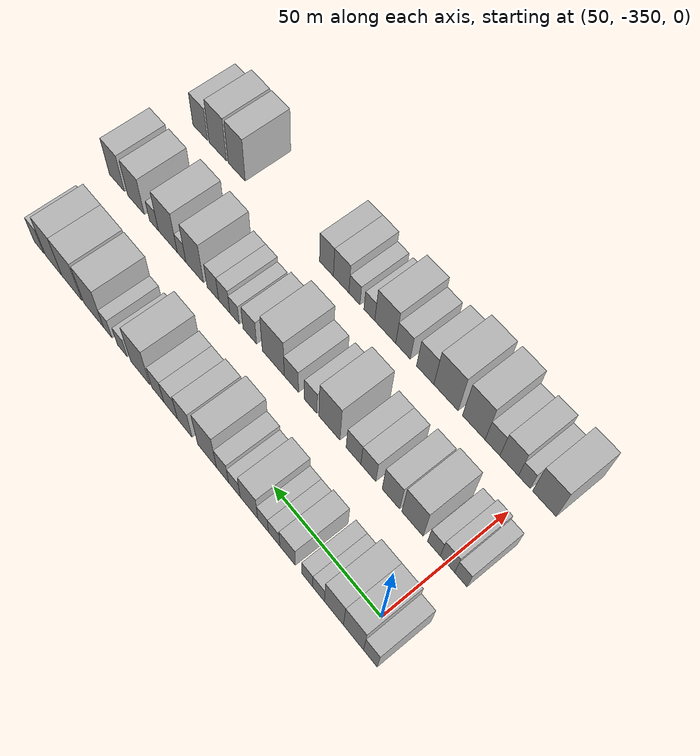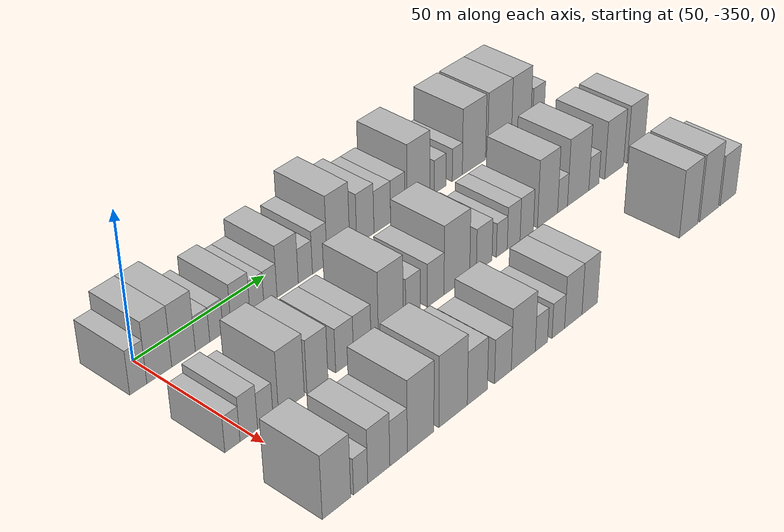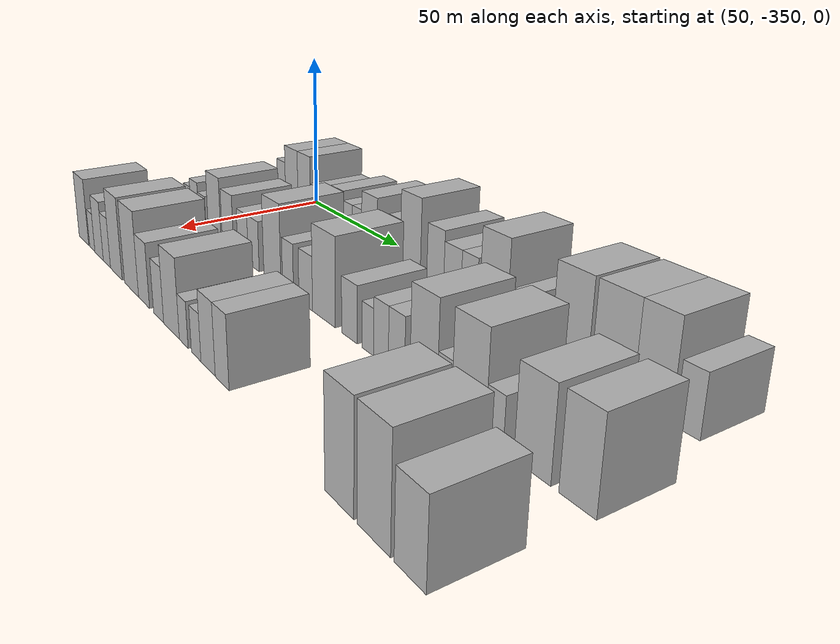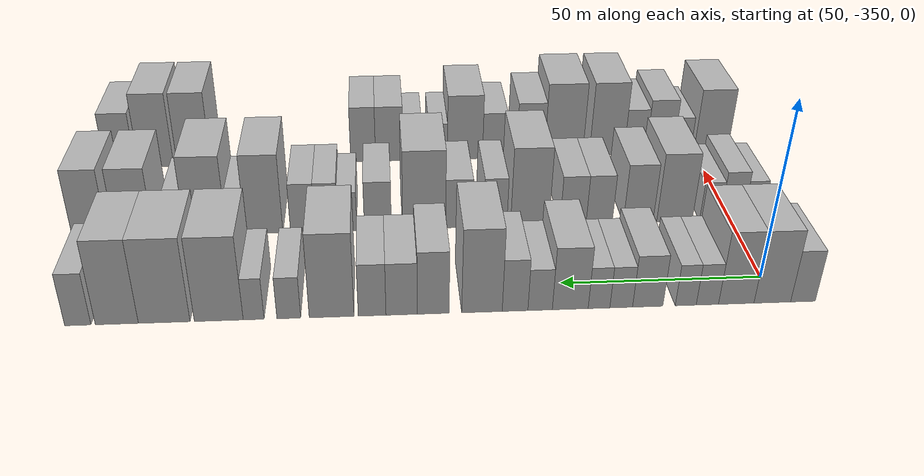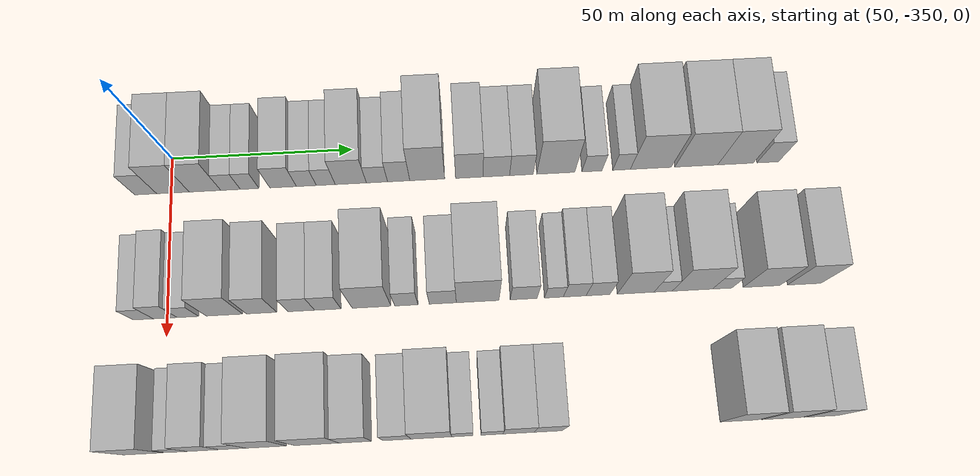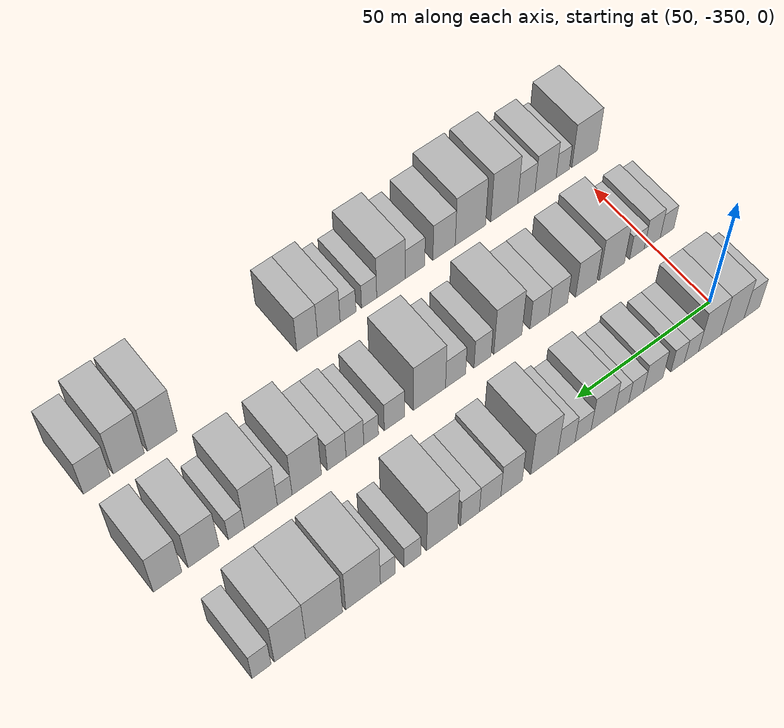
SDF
<sdf version="1.6">
 <world name="default">
  <model name="building_1">
   <static>1</static>
   <pose>50.0000 -356.9835 0 0.000000 0.000000 0.000000</pose>
   <link name="link">
    <pose>0 0 7.50 0 0 0</pose>
    <collision name="collision"><geometry><box><size>20.0000 6.0329 15.0000</size></box></geometry></collision>
    <visual name="visual">
     <cast_shadows>0</cast_shadows>
     <geometry><box><size>20.0000 6.0329 15.0000</size></box></geometry>
     <material>
      <script>
       <uri>model://HANNAS_wall/materials/scripts</uri>
       <uri>model://HANNAS_wall/materials/textures</uri>
       <name>vrc/HANNAS_wall</name>
      </script>
     </material>
    </visual>
   </link>
  </model>
  <model name="building_2">
   <static>1</static>
   <pose>50.0000 -349.4914 0 0.000000 0.000000 0.000000</pose>
   <link name="link">
    <pose>0 0 10.50 0 0 0</pose>
    <collision name="collision"><geometry><box><size>20.0000 8.9514 21.0000</size></box></geometry></collision>
    <visual name="visual">
     <cast_shadows>0</cast_shadows>
     <geometry><box><size>20.0000 8.9514 21.0000</size></box></geometry>
     <material>
      <script>
       <uri>model://HANNAS_wall/materials/scripts</uri>
       <uri>model://HANNAS_wall/materials/textures</uri>
       <name>vrc/HANNAS_wall</name>
      </script>
     </material>
    </visual>
   </link>
  </model>
  <model name="building_3">
   <static>1</static>
   <pose>50.0000 -340.6945 0 0.000000 0.000000 0.000000</pose>
   <link name="link">
    <pose>0 0 10.50 0 0 0</pose>
    <collision name="collision"><geometry><box><size>20.0000 8.6423 21.0000</size></box></geometry></collision>
    <visual name="visual">
     <cast_shadows>0</cast_shadows>
     <geometry><box><size>20.0000 8.6423 21.0000</size></box></geometry>
     <material>
      <script>
       <uri>model://HANNAS_wall/materials/scripts</uri>
       <uri>model://HANNAS_wall/materials/textures</uri>
       <name>vrc/HANNAS_wall</name>
      </script>
     </material>
    </visual>
   </link>
  </model>
  <model name="building_4">
   <static>1</static>
   <pose>50.0000 -333.6761 0 0.000000 0.000000 0.000000</pose>
   <link name="link">
    <pose>0 0 6.00 0 0 0</pose>
    <collision name="collision"><geometry><box><size>20.0000 5.3945 12.0000</size></box></geometry></collision>
    <visual name="visual">
     <cast_shadows>0</cast_shadows>
     <geometry><box><size>20.0000 5.3945 12.0000</size></box></geometry>
     <material>
      <script>
       <uri>model://HANNAS_wall/materials/scripts</uri>
       <uri>model://HANNAS_wall/materials/textures</uri>
       <name>vrc/HANNAS_wall</name>
      </script>
     </material>
    </visual>
   </link>
  </model>
  <model name="building_5">
   <static>1</static>
   <pose>50.0000 -328.4393 0 0.000000 0.000000 0.000000</pose>
   <link name="link">
    <pose>0 0 6.00 0 0 0</pose>
    <collision name="collision"><geometry><box><size>20.0000 5.0790 12.0000</size></box></geometry></collision>
    <visual name="visual">
     <cast_shadows>0</cast_shadows>
     <geometry><box><size>20.0000 5.0790 12.0000</size></box></geometry>
     <material>
      <script>
       <uri>model://HANNAS_wall/materials/scripts</uri>
       <uri>model://HANNAS_wall/materials/textures</uri>
       <name>vrc/HANNAS_wall</name>
      </script>
     </material>
    </visual>
   </link>
  </model>
  <model name="building_6">
   <static>1</static>
   <pose>50.0000 -319.2377 0 0.000000 0.000000 0.000000</pose>
   <link name="link">
    <pose>0 0 7.50 0 0 0</pose>
    <collision name="collision"><geometry><box><size>20.0000 7.3243 15.0000</size></box></geometry></collision>
    <visual name="visual">
     <cast_shadows>0</cast_shadows>
     <geometry><box><size>20.0000 7.3243 15.0000</size></box></geometry>
     <material>
      <script>
       <uri>model://HANNAS_wall/materials/scripts</uri>
       <uri>model://HANNAS_wall/materials/textures</uri>
       <name>vrc/HANNAS_wall</name>
      </script>
     </material>
    </visual>
   </link>
  </model>
  <model name="building_7">
   <static>1</static>
   <pose>50.0000 -312.8439 0 0.000000 0.000000 0.000000</pose>
   <link name="link">
    <pose>0 0 6.00 0 0 0</pose>
    <collision name="collision"><geometry><box><size>20.0000 5.4632 12.0000</size></box></geometry></collision>
    <visual name="visual">
     <cast_shadows>0</cast_shadows>
     <geometry><box><size>20.0000 5.4632 12.0000</size></box></geometry>
     <material>
      <script>
       <uri>model://HANNAS_wall/materials/scripts</uri>
       <uri>model://HANNAS_wall/materials/textures</uri>
       <name>vrc/HANNAS_wall</name>
      </script>
     </material>
    </visual>
   </link>
  </model>
  <model name="building_8">
   <static>1</static>
   <pose>50.0000 -307.4999 0 0.000000 0.000000 0.000000</pose>
   <link name="link">
    <pose>0 0 6.00 0 0 0</pose>
    <collision name="collision"><geometry><box><size>20.0000 5.2248 12.0000</size></box></geometry></collision>
    <visual name="visual">
     <cast_shadows>0</cast_shadows>
     <geometry><box><size>20.0000 5.2248 12.0000</size></box></geometry>
     <material>
      <script>
       <uri>model://HANNAS_wall/materials/scripts</uri>
       <uri>model://HANNAS_wall/materials/textures</uri>
       <name>vrc/HANNAS_wall</name>
      </script>
     </material>
    </visual>
   </link>
  </model>
  <model name="building_9">
   <static>1</static>
   <pose>50.0000 -300.5906 0 0.000000 0.000000 0.000000</pose>
   <link name="link">
    <pose>0 0 9.00 0 0 0</pose>
    <collision name="collision"><geometry><box><size>20.0000 8.5937 18.0000</size></box></geometry></collision>
    <visual name="visual">
     <cast_shadows>0</cast_shadows>
     <geometry><box><size>20.0000 8.5937 18.0000</size></box></geometry>
     <material>
      <script>
       <uri>model://HANNAS_wall/materials/scripts</uri>
       <uri>model://HANNAS_wall/materials/textures</uri>
       <name>vrc/HANNAS_wall</name>
      </script>
     </material>
    </visual>
   </link>
  </model>
  <model name="building_10">
   <static>1</static>
   <pose>50.0000 -293.3726 0 0.000000 0.000000 0.000000</pose>
   <link name="link">
    <pose>0 0 6.00 0 0 0</pose>
    <collision name="collision"><geometry><box><size>20.0000 5.8423 12.0000</size></box></geometry></collision>
    <visual name="visual">
     <cast_shadows>0</cast_shadows>
     <geometry><box><size>20.0000 5.8423 12.0000</size></box></geometry>
     <material>
      <script>
       <uri>model://HANNAS_wall/materials/scripts</uri>
       <uri>model://HANNAS_wall/materials/textures</uri>
       <name>vrc/HANNAS_wall</name>
      </script>
     </material>
    </visual>
   </link>
  </model>
  <model name="building_11">
   <static>1</static>
   <pose>50.0000 -287.3833 0 0.000000 0.000000 0.000000</pose>
   <link name="link">
    <pose>0 0 7.50 0 0 0</pose>
    <collision name="collision"><geometry><box><size>20.0000 6.1364 15.0000</size></box></geometry></collision>
    <visual name="visual">
     <cast_shadows>0</cast_shadows>
     <geometry><box><size>20.0000 6.1364 15.0000</size></box></geometry>
     <material>
      <script>
       <uri>model://HANNAS_wall/materials/scripts</uri>
       <uri>model://HANNAS_wall/materials/textures</uri>
       <name>vrc/HANNAS_wall</name>
      </script>
     </material>
    </visual>
   </link>
  </model>
  <model name="building_12">
   <static>1</static>
   <pose>50.0000 -279.4902 0 0.000000 0.000000 0.000000</pose>
   <link name="link">
    <pose>0 0 12.00 0 0 0</pose>
    <collision name="collision"><geometry><box><size>20.0000 9.6498 24.0000</size></box></geometry></collision>
    <visual name="visual">
     <cast_shadows>0</cast_shadows>
     <geometry><box><size>20.0000 9.6498 24.0000</size></box></geometry>
     <material>
      <script>
       <uri>model://HANNAS_wall/materials/scripts</uri>
       <uri>model://HANNAS_wall/materials/textures</uri>
       <name>vrc/HANNAS_wall</name>
      </script>
     </material>
    </visual>
   </link>
  </model>
  <model name="building_13">
   <static>1</static>
   <pose>50.0000 -267.8893 0 0.000000 0.000000 0.000000</pose>
   <link name="link">
    <pose>0 0 9.00 0 0 0</pose>
    <collision name="collision"><geometry><box><size>20.0000 7.5519 18.0000</size></box></geometry></collision>
    <visual name="visual">
     <cast_shadows>0</cast_shadows>
     <geometry><box><size>20.0000 7.5519 18.0000</size></box></geometry>
     <material>
      <script>
       <uri>model://HANNAS_wall/materials/scripts</uri>
       <uri>model://HANNAS_wall/materials/textures</uri>
       <name>vrc/HANNAS_wall</name>
      </script>
     </material>
    </visual>
   </link>
  </model>
  <model name="building_14">
   <static>1</static>
   <pose>50.0000 -260.4204 0 0.000000 0.000000 0.000000</pose>
   <link name="link">
    <pose>0 0 7.50 0 0 0</pose>
    <collision name="collision"><geometry><box><size>20.0000 7.3857 15.0000</size></box></geometry></collision>
    <visual name="visual">
     <cast_shadows>0</cast_shadows>
     <geometry><box><size>20.0000 7.3857 15.0000</size></box></geometry>
     <material>
      <script>
       <uri>model://HANNAS_wall/materials/scripts</uri>
       <uri>model://HANNAS_wall/materials/textures</uri>
       <name>vrc/HANNAS_wall</name>
      </script>
     </material>
    </visual>
   </link>
  </model>
  <model name="building_15">
   <static>1</static>
   <pose>50.0000 -253.4633 0 0.000000 0.000000 0.000000</pose>
   <link name="link">
    <pose>0 0 7.50 0 0 0</pose>
    <collision name="collision"><geometry><box><size>20.0000 6.5285 15.0000</size></box></geometry></collision>
    <visual name="visual">
     <cast_shadows>0</cast_shadows>
     <geometry><box><size>20.0000 6.5285 15.0000</size></box></geometry>
     <material>
      <script>
       <uri>model://HANNAS_wall/materials/scripts</uri>
       <uri>model://HANNAS_wall/materials/textures</uri>
       <name>vrc/HANNAS_wall</name>
      </script>
     </material>
    </visual>
   </link>
  </model>
  <model name="building_16">
   <static>1</static>
   <pose>50.0000 -243.9279 0 0.000000 0.000000 0.000000</pose>
   <link name="link">
    <pose>0 0 12.00 0 0 0</pose>
    <collision name="collision"><geometry><box><size>20.0000 10.5424 24.0000</size></box></geometry></collision>
    <visual name="visual">
     <cast_shadows>0</cast_shadows>
     <geometry><box><size>20.0000 10.5424 24.0000</size></box></geometry>
     <material>
      <script>
       <uri>model://HANNAS_wall/materials/scripts</uri>
       <uri>model://HANNAS_wall/materials/textures</uri>
       <name>vrc/HANNAS_wall</name>
      </script>
     </material>
    </visual>
   </link>
  </model>
  <model name="building_17">
   <static>1</static>
   <pose>50.0000 -233.8739 0 0.000000 0.000000 0.000000</pose>
   <link name="link">
    <pose>0 0 6.00 0 0 0</pose>
    <collision name="collision"><geometry><box><size>20.0000 5.5656 12.0000</size></box></geometry></collision>
    <visual name="visual">
     <cast_shadows>0</cast_shadows>
     <geometry><box><size>20.0000 5.5656 12.0000</size></box></geometry>
     <material>
      <script>
       <uri>model://HANNAS_wall/materials/scripts</uri>
       <uri>model://HANNAS_wall/materials/textures</uri>
       <name>vrc/HANNAS_wall</name>
      </script>
     </material>
    </visual>
   </link>
  </model>
  <model name="building_18">
   <static>1</static>
   <pose>50.0000 -225.6553 0 0.000000 0.000000 0.000000</pose>
   <link name="link">
    <pose>0 0 6.00 0 0 0</pose>
    <collision name="collision"><geometry><box><size>20.0000 4.8715 12.0000</size></box></geometry></collision>
    <visual name="visual">
     <cast_shadows>0</cast_shadows>
     <geometry><box><size>20.0000 4.8715 12.0000</size></box></geometry>
     <material>
      <script>
       <uri>model://HANNAS_wall/materials/scripts</uri>
       <uri>model://HANNAS_wall/materials/textures</uri>
       <name>vrc/HANNAS_wall</name>
      </script>
     </material>
    </visual>
   </link>
  </model>
  <model name="building_19">
   <static>1</static>
   <pose>50.0000 -217.5249 0 0.000000 0.000000 0.000000</pose>
   <link name="link">
    <pose>0 0 12.00 0 0 0</pose>
    <collision name="collision"><geometry><box><size>20.0000 11.3892 24.0000</size></box></geometry></collision>
    <visual name="visual">
     <cast_shadows>0</cast_shadows>
     <geometry><box><size>20.0000 11.3892 24.0000</size></box></geometry>
     <material>
      <script>
       <uri>model://HANNAS_wall/materials/scripts</uri>
       <uri>model://HANNAS_wall/materials/textures</uri>
       <name>vrc/HANNAS_wall</name>
      </script>
     </material>
    </visual>
   </link>
  </model>
  <model name="building_20">
   <static>1</static>
   <pose>50.0000 -204.8375 0 0.000000 0.000000 0.000000</pose>
   <link name="link">
    <pose>0 0 12.00 0 0 0</pose>
    <collision name="collision"><geometry><box><size>20.0000 11.9856 24.0000</size></box></geometry></collision>
    <visual name="visual">
     <cast_shadows>0</cast_shadows>
     <geometry><box><size>20.0000 11.9856 24.0000</size></box></geometry>
     <material>
      <script>
       <uri>model://HANNAS_wall/materials/scripts</uri>
       <uri>model://HANNAS_wall/materials/textures</uri>
       <name>vrc/HANNAS_wall</name>
      </script>
     </material>
    </visual>
   </link>
  </model>
  <model name="building_21">
   <static>1</static>
   <pose>50.0000 -193.8713 0 0.000000 0.000000 0.000000</pose>
   <link name="link">
    <pose>0 0 12.00 0 0 0</pose>
    <collision name="collision"><geometry><box><size>20.0000 9.9468 24.0000</size></box></geometry></collision>
    <visual name="visual">
     <cast_shadows>0</cast_shadows>
     <geometry><box><size>20.0000 9.9468 24.0000</size></box></geometry>
     <material>
      <script>
       <uri>model://HANNAS_wall/materials/scripts</uri>
       <uri>model://HANNAS_wall/materials/textures</uri>
       <name>vrc/HANNAS_wall</name>
      </script>
     </material>
    </visual>
   </link>
  </model>
  <model name="building_22">
   <static>1</static>
   <pose>50.0000 -184.8738 0 0.000000 0.000000 0.000000</pose>
   <link name="link">
    <pose>0 0 7.50 0 0 0</pose>
    <collision name="collision"><geometry><box><size>20.0000 6.0483 15.0000</size></box></geometry></collision>
    <visual name="visual">
     <cast_shadows>0</cast_shadows>
     <geometry><box><size>20.0000 6.0483 15.0000</size></box></geometry>
     <material>
      <script>
       <uri>model://HANNAS_wall/materials/scripts</uri>
       <uri>model://HANNAS_wall/materials/textures</uri>
       <name>vrc/HANNAS_wall</name>
      </script>
     </material>
    </visual>
   </link>
  </model>
  <model name="building_88">
   <static>1</static>
   <pose>85.0000 -356.3229 0 0.000000 0.000000 0.000000</pose>
   <link name="link">
    <pose>0 0 6.00 0 0 0</pose>
    <collision name="collision"><geometry><box><size>20.0000 5.3542 12.0000</size></box></geometry></collision>
    <visual name="visual">
     <cast_shadows>0</cast_shadows>
     <geometry><box><size>20.0000 5.3542 12.0000</size></box></geometry>
     <material>
      <script>
       <uri>model://HANNAS_wall/materials/scripts</uri>
       <uri>model://HANNAS_wall/materials/textures</uri>
       <name>vrc/HANNAS_wall</name>
      </script>
     </material>
    </visual>
   </link>
  </model>
  <model name="building_89">
   <static>1</static>
   <pose>85.0000 -350.4812 0 0.000000 0.000000 0.000000</pose>
   <link name="link">
    <pose>0 0 7.50 0 0 0</pose>
    <collision name="collision"><geometry><box><size>20.0000 6.3292 15.0000</size></box></geometry></collision>
    <visual name="visual">
     <cast_shadows>0</cast_shadows>
     <geometry><box><size>20.0000 6.3292 15.0000</size></box></geometry>
     <material>
      <script>
       <uri>model://HANNAS_wall/materials/scripts</uri>
       <uri>model://HANNAS_wall/materials/textures</uri>
       <name>vrc/HANNAS_wall</name>
      </script>
     </material>
    </visual>
   </link>
  </model>
  <model name="building_90">
   <static>1</static>
   <pose>85.0000 -344.4935 0 0.000000 0.000000 0.000000</pose>
   <link name="link">
    <pose>0 0 6.00 0 0 0</pose>
    <collision name="collision"><geometry><box><size>20.0000 5.6460 12.0000</size></box></geometry></collision>
    <visual name="visual">
     <cast_shadows>0</cast_shadows>
     <geometry><box><size>20.0000 5.6460 12.0000</size></box></geometry>
     <material>
      <script>
       <uri>model://HANNAS_wall/materials/scripts</uri>
       <uri>model://HANNAS_wall/materials/textures</uri>
       <name>vrc/HANNAS_wall</name>
      </script>
     </material>
    </visual>
   </link>
  </model>
  <model name="building_91">
   <static>1</static>
   <pose>85.0000 -334.8449 0 0.000000 0.000000 0.000000</pose>
   <link name="link">
    <pose>0 0 10.50 0 0 0</pose>
    <collision name="collision"><geometry><box><size>20.0000 9.6511 21.0000</size></box></geometry></collision>
    <visual name="visual">
     <cast_shadows>0</cast_shadows>
     <geometry><box><size>20.0000 9.6511 21.0000</size></box></geometry>
     <material>
      <script>
       <uri>model://HANNAS_wall/materials/scripts</uri>
       <uri>model://HANNAS_wall/materials/textures</uri>
       <name>vrc/HANNAS_wall</name>
      </script>
     </material>
    </visual>
   </link>
  </model>
  <model name="building_92">
   <static>1</static>
   <pose>85.0000 -324.9909 0 0.000000 0.000000 0.000000</pose>
   <link name="link">
    <pose>0 0 9.00 0 0 0</pose>
    <collision name="collision"><geometry><box><size>20.0000 8.0570 18.0000</size></box></geometry></collision>
    <visual name="visual">
     <cast_shadows>0</cast_shadows>
     <geometry><box><size>20.0000 8.0570 18.0000</size></box></geometry>
     <material>
      <script>
       <uri>model://HANNAS_wall/materials/scripts</uri>
       <uri>model://HANNAS_wall/materials/textures</uri>
       <name>vrc/HANNAS_wall</name>
      </script>
     </material>
    </visual>
   </link>
  </model>
  <model name="building_93">
   <static>1</static>
   <pose>85.0000 -314.4348 0 0.000000 0.000000 0.000000</pose>
   <link name="link">
    <pose>0 0 7.50 0 0 0</pose>
    <collision name="collision"><geometry><box><size>20.0000 7.0551 15.0000</size></box></geometry></collision>
    <visual name="visual">
     <cast_shadows>0</cast_shadows>
     <geometry><box><size>20.0000 7.0551 15.0000</size></box></geometry>
     <material>
      <script>
       <uri>model://HANNAS_wall/materials/scripts</uri>
       <uri>model://HANNAS_wall/materials/textures</uri>
       <name>vrc/HANNAS_wall</name>
      </script>
     </material>
    </visual>
   </link>
  </model>
  <model name="building_94">
   <static>1</static>
   <pose>85.0000 -307.4000 0 0.000000 0.000000 0.000000</pose>
   <link name="link">
    <pose>0 0 7.50 0 0 0</pose>
    <collision name="collision"><geometry><box><size>20.0000 7.0146 15.0000</size></box></geometry></collision>
    <visual name="visual">
     <cast_shadows>0</cast_shadows>
     <geometry><box><size>20.0000 7.0146 15.0000</size></box></geometry>
     <material>
      <script>
       <uri>model://HANNAS_wall/materials/scripts</uri>
       <uri>model://HANNAS_wall/materials/textures</uri>
       <name>vrc/HANNAS_wall</name>
      </script>
     </material>
    </visual>
   </link>
  </model>
  <model name="building_95">
   <static>1</static>
   <pose>85.0000 -295.7434 0 0.000000 0.000000 0.000000</pose>
   <link name="link">
    <pose>0 0 12.00 0 0 0</pose>
    <collision name="collision"><geometry><box><size>20.0000 10.2986 24.0000</size></box></geometry></collision>
    <visual name="visual">
     <cast_shadows>0</cast_shadows>
     <geometry><box><size>20.0000 10.2986 24.0000</size></box></geometry>
     <material>
      <script>
       <uri>model://HANNAS_wall/materials/scripts</uri>
       <uri>model://HANNAS_wall/materials/textures</uri>
       <name>vrc/HANNAS_wall</name>
      </script>
     </material>
    </visual>
   </link>
  </model>
  <model name="building_96">
   <static>1</static>
   <pose>85.0000 -286.5007 0 0.000000 0.000000 0.000000</pose>
   <link name="link">
    <pose>0 0 7.50 0 0 0</pose>
    <collision name="collision"><geometry><box><size>20.0000 6.1868 15.0000</size></box></geometry></collision>
    <visual name="visual">
     <cast_shadows>0</cast_shadows>
     <geometry><box><size>20.0000 6.1868 15.0000</size></box></geometry>
     <material>
      <script>
       <uri>model://HANNAS_wall/materials/scripts</uri>
       <uri>model://HANNAS_wall/materials/textures</uri>
       <name>vrc/HANNAS_wall</name>
      </script>
     </material>
    </visual>
   </link>
  </model>
  <model name="building_97">
   <static>1</static>
   <pose>85.0000 -276.8052 0 0.000000 0.000000 0.000000</pose>
   <link name="link">
    <pose>0 0 7.50 0 0 0</pose>
    <collision name="collision"><geometry><box><size>20.0000 7.2042 15.0000</size></box></geometry></collision>
    <visual name="visual">
     <cast_shadows>0</cast_shadows>
     <geometry><box><size>20.0000 7.2042 15.0000</size></box></geometry>
     <material>
      <script>
       <uri>model://HANNAS_wall/materials/scripts</uri>
       <uri>model://HANNAS_wall/materials/textures</uri>
       <name>vrc/HANNAS_wall</name>
      </script>
     </material>
    </visual>
   </link>
  </model>
  <model name="building_98">
   <static>1</static>
   <pose>85.0000 -267.5084 0 0.000000 0.000000 0.000000</pose>
   <link name="link">
    <pose>0 0 12.00 0 0 0</pose>
    <collision name="collision"><geometry><box><size>20.0000 11.3893 24.0000</size></box></geometry></collision>
    <visual name="visual">
     <cast_shadows>0</cast_shadows>
     <geometry><box><size>20.0000 11.3893 24.0000</size></box></geometry>
     <material>
      <script>
       <uri>model://HANNAS_wall/materials/scripts</uri>
       <uri>model://HANNAS_wall/materials/textures</uri>
       <name>vrc/HANNAS_wall</name>
      </script>
     </material>
    </visual>
   </link>
  </model>
  <model name="building_99">
   <static>1</static>
   <pose>85.0000 -255.2393 0 0.000000 0.000000 0.000000</pose>
   <link name="link">
    <pose>0 0 7.50 0 0 0</pose>
    <collision name="collision"><geometry><box><size>20.0000 7.1490 15.0000</size></box></geometry></collision>
    <visual name="visual">
     <cast_shadows>0</cast_shadows>
     <geometry><box><size>20.0000 7.1490 15.0000</size></box></geometry>
     <material>
      <script>
       <uri>model://HANNAS_wall/materials/scripts</uri>
       <uri>model://HANNAS_wall/materials/textures</uri>
       <name>vrc/HANNAS_wall</name>
      </script>
     </material>
    </visual>
   </link>
  </model>
  <model name="building_100">
   <static>1</static>
   <pose>85.0000 -247.1373 0 0.000000 0.000000 0.000000</pose>
   <link name="link">
    <pose>0 0 6.00 0 0 0</pose>
    <collision name="collision"><geometry><box><size>20.0000 5.0549 12.0000</size></box></geometry></collision>
    <visual name="visual">
     <cast_shadows>0</cast_shadows>
     <geometry><box><size>20.0000 5.0549 12.0000</size></box></geometry>
     <material>
      <script>
       <uri>model://HANNAS_wall/materials/scripts</uri>
       <uri>model://HANNAS_wall/materials/textures</uri>
       <name>vrc/HANNAS_wall</name>
      </script>
     </material>
    </visual>
   </link>
  </model>
  <model name="building_101">
   <static>1</static>
   <pose>85.0000 -241.5683 0 0.000000 0.000000 0.000000</pose>
   <link name="link">
    <pose>0 0 7.50 0 0 0</pose>
    <collision name="collision"><geometry><box><size>20.0000 6.0831 15.0000</size></box></geometry></collision>
    <visual name="visual">
     <cast_shadows>0</cast_shadows>
     <geometry><box><size>20.0000 6.0831 15.0000</size></box></geometry>
     <material>
      <script>
       <uri>model://HANNAS_wall/materials/scripts</uri>
       <uri>model://HANNAS_wall/materials/textures</uri>
       <name>vrc/HANNAS_wall</name>
      </script>
     </material>
    </visual>
   </link>
  </model>
  <model name="building_102">
   <static>1</static>
   <pose>85.0000 -235.3431 0 0.000000 0.000000 0.000000</pose>
   <link name="link">
    <pose>0 0 7.50 0 0 0</pose>
    <collision name="collision"><geometry><box><size>20.0000 6.3673 15.0000</size></box></geometry></collision>
    <visual name="visual">
     <cast_shadows>0</cast_shadows>
     <geometry><box><size>20.0000 6.3673 15.0000</size></box></geometry>
     <material>
      <script>
       <uri>model://HANNAS_wall/materials/scripts</uri>
       <uri>model://HANNAS_wall/materials/textures</uri>
       <name>vrc/HANNAS_wall</name>
      </script>
     </material>
    </visual>
   </link>
  </model>
  <model name="building_103">
   <static>1</static>
   <pose>85.0000 -225.2364 0 0.000000 0.000000 0.000000</pose>
   <link name="link">
    <pose>0 0 12.00 0 0 0</pose>
    <collision name="collision"><geometry><box><size>20.0000 9.8462 24.0000</size></box></geometry></collision>
    <visual name="visual">
     <cast_shadows>0</cast_shadows>
     <geometry><box><size>20.0000 9.8462 24.0000</size></box></geometry>
     <material>
      <script>
       <uri>model://HANNAS_wall/materials/scripts</uri>
       <uri>model://HANNAS_wall/materials/textures</uri>
       <name>vrc/HANNAS_wall</name>
      </script>
     </material>
    </visual>
   </link>
  </model>
  <model name="building_104">
   <static>1</static>
   <pose>85.0000 -217.8574 0 0.000000 0.000000 0.000000</pose>
   <link name="link">
    <pose>0 0 6.00 0 0 0</pose>
    <collision name="collision"><geometry><box><size>20.0000 4.9117 12.0000</size></box></geometry></collision>
    <visual name="visual">
     <cast_shadows>0</cast_shadows>
     <geometry><box><size>20.0000 4.9117 12.0000</size></box></geometry>
     <material>
      <script>
       <uri>model://HANNAS_wall/materials/scripts</uri>
       <uri>model://HANNAS_wall/materials/textures</uri>
       <name>vrc/HANNAS_wall</name>
      </script>
     </material>
    </visual>
   </link>
  </model>
  <model name="building_105">
   <static>1</static>
   <pose>85.0000 -209.9858 0 0.000000 0.000000 0.000000</pose>
   <link name="link">
    <pose>0 0 12.00 0 0 0</pose>
    <collision name="collision"><geometry><box><size>20.0000 10.8316 24.0000</size></box></geometry></collision>
    <visual name="visual">
     <cast_shadows>0</cast_shadows>
     <geometry><box><size>20.0000 10.8316 24.0000</size></box></geometry>
     <material>
      <script>
       <uri>model://HANNAS_wall/materials/scripts</uri>
       <uri>model://HANNAS_wall/materials/textures</uri>
       <name>vrc/HANNAS_wall</name>
      </script>
     </material>
    </visual>
   </link>
  </model>
  <model name="building_106">
   <static>1</static>
   <pose>85.0000 -201.9390 0 0.000000 0.000000 0.000000</pose>
   <link name="link">
    <pose>0 0 6.00 0 0 0</pose>
    <collision name="collision"><geometry><box><size>20.0000 5.2619 12.0000</size></box></geometry></collision>
    <visual name="visual">
     <cast_shadows>0</cast_shadows>
     <geometry><box><size>20.0000 5.2619 12.0000</size></box></geometry>
     <material>
      <script>
       <uri>model://HANNAS_wall/materials/scripts</uri>
       <uri>model://HANNAS_wall/materials/textures</uri>
       <name>vrc/HANNAS_wall</name>
      </script>
     </material>
    </visual>
   </link>
  </model>
  <model name="building_107">
   <static>1</static>
   <pose>85.0000 -191.3452 0 0.000000 0.000000 0.000000</pose>
   <link name="link">
    <pose>0 0 10.50 0 0 0</pose>
    <collision name="collision"><geometry><box><size>20.0000 9.9256 21.0000</size></box></geometry></collision>
    <visual name="visual">
     <cast_shadows>0</cast_shadows>
     <geometry><box><size>20.0000 9.9256 21.0000</size></box></geometry>
     <material>
      <script>
       <uri>model://HANNAS_wall/materials/scripts</uri>
       <uri>model://HANNAS_wall/materials/textures</uri>
       <name>vrc/HANNAS_wall</name>
      </script>
     </material>
    </visual>
   </link>
  </model>
  <model name="building_108">
   <static>1</static>
   <pose>85.0000 -179.8351 0 0.000000 0.000000 0.000000</pose>
   <link name="link">
    <pose>0 0 10.50 0 0 0</pose>
    <collision name="collision"><geometry><box><size>20.0000 9.0946 21.0000</size></box></geometry></collision>
    <visual name="visual">
     <cast_shadows>0</cast_shadows>
     <geometry><box><size>20.0000 9.0946 21.0000</size></box></geometry>
     <material>
      <script>
       <uri>model://HANNAS_wall/materials/scripts</uri>
       <uri>model://HANNAS_wall/materials/textures</uri>
       <name>vrc/HANNAS_wall</name>
      </script>
     </material>
    </visual>
   </link>
  </model>
  <model name="building_160">
   <static>1</static>
   <pose>120.0000 -354.9096 0 0.000000 0.000000 0.000000</pose>
   <link name="link">
    <pose>0 0 10.50 0 0 0</pose>
    <collision name="collision"><geometry><box><size>20.0000 10.1809 21.0000</size></box></geometry></collision>
    <visual name="visual">
     <cast_shadows>0</cast_shadows>
     <geometry><box><size>20.0000 10.1809 21.0000</size></box></geometry>
     <material>
      <script>
       <uri>model://HANNAS_wall/materials/scripts</uri>
       <uri>model://HANNAS_wall/materials/textures</uri>
       <name>vrc/HANNAS_wall</name>
      </script>
     </material>
    </visual>
   </link>
  </model>
  <model name="building_161">
   <static>1</static>
   <pose>120.0000 -346.2157 0 0.000000 0.000000 0.000000</pose>
   <link name="link">
    <pose>0 0 6.00 0 0 0</pose>
    <collision name="collision"><geometry><box><size>20.0000 5.2068 12.0000</size></box></geometry></collision>
    <visual name="visual">
     <cast_shadows>0</cast_shadows>
     <geometry><box><size>20.0000 5.2068 12.0000</size></box></geometry>
     <material>
      <script>
       <uri>model://HANNAS_wall/materials/scripts</uri>
       <uri>model://HANNAS_wall/materials/textures</uri>
       <name>vrc/HANNAS_wall</name>
      </script>
     </material>
    </visual>
   </link>
  </model>
  <model name="building_162">
   <static>1</static>
   <pose>120.0000 -339.5004 0 0.000000 0.000000 0.000000</pose>
   <link name="link">
    <pose>0 0 9.00 0 0 0</pose>
    <collision name="collision"><geometry><box><size>20.0000 8.2238 18.0000</size></box></geometry></collision>
    <visual name="visual">
     <cast_shadows>0</cast_shadows>
     <geometry><box><size>20.0000 8.2238 18.0000</size></box></geometry>
     <material>
      <script>
       <uri>model://HANNAS_wall/materials/scripts</uri>
       <uri>model://HANNAS_wall/materials/textures</uri>
       <name>vrc/HANNAS_wall</name>
      </script>
     </material>
    </visual>
   </link>
  </model>
  <model name="building_163">
   <static>1</static>
   <pose>120.0000 -332.0533 0 0.000000 0.000000 0.000000</pose>
   <link name="link">
    <pose>0 0 7.50 0 0 0</pose>
    <collision name="collision"><geometry><box><size>20.0000 6.6703 15.0000</size></box></geometry></collision>
    <visual name="visual">
     <cast_shadows>0</cast_shadows>
     <geometry><box><size>20.0000 6.6703 15.0000</size></box></geometry>
     <material>
      <script>
       <uri>model://HANNAS_wall/materials/scripts</uri>
       <uri>model://HANNAS_wall/materials/textures</uri>
       <name>vrc/HANNAS_wall</name>
      </script>
     </material>
    </visual>
   </link>
  </model>
  <model name="building_164">
   <static>1</static>
   <pose>120.0000 -323.5509 0 0.000000 0.000000 0.000000</pose>
   <link name="link">
    <pose>0 0 12.00 0 0 0</pose>
    <collision name="collision"><geometry><box><size>20.0000 10.3345 24.0000</size></box></geometry></collision>
    <visual name="visual">
     <cast_shadows>0</cast_shadows>
     <geometry><box><size>20.0000 10.3345 24.0000</size></box></geometry>
     <material>
      <script>
       <uri>model://HANNAS_wall/materials/scripts</uri>
       <uri>model://HANNAS_wall/materials/textures</uri>
       <name>vrc/HANNAS_wall</name>
      </script>
     </material>
    </visual>
   </link>
  </model>
  <model name="building_165">
   <static>1</static>
   <pose>120.0000 -310.6735 0 0.000000 0.000000 0.000000</pose>
   <link name="link">
    <pose>0 0 12.00 0 0 0</pose>
    <collision name="collision"><geometry><box><size>20.0000 11.4201 24.0000</size></box></geometry></collision>
    <visual name="visual">
     <cast_shadows>0</cast_shadows>
     <geometry><box><size>20.0000 11.4201 24.0000</size></box></geometry>
     <material>
      <script>
       <uri>model://HANNAS_wall/materials/scripts</uri>
       <uri>model://HANNAS_wall/materials/textures</uri>
       <name>vrc/HANNAS_wall</name>
      </script>
     </material>
    </visual>
   </link>
  </model>
  <model name="building_166">
   <static>1</static>
   <pose>120.0000 -300.8086 0 0.000000 0.000000 0.000000</pose>
   <link name="link">
    <pose>0 0 9.00 0 0 0</pose>
    <collision name="collision"><geometry><box><size>20.0000 8.3097 18.0000</size></box></geometry></collision>
    <visual name="visual">
     <cast_shadows>0</cast_shadows>
     <geometry><box><size>20.0000 8.3097 18.0000</size></box></geometry>
     <material>
      <script>
       <uri>model://HANNAS_wall/materials/scripts</uri>
       <uri>model://HANNAS_wall/materials/textures</uri>
       <name>vrc/HANNAS_wall</name>
      </script>
     </material>
    </visual>
   </link>
  </model>
  <model name="building_167">
   <static>1</static>
   <pose>120.0000 -290.0871 0 0.000000 0.000000 0.000000</pose>
   <link name="link">
    <pose>0 0 7.50 0 0 0</pose>
    <collision name="collision"><geometry><box><size>20.0000 7.1334 15.0000</size></box></geometry></collision>
    <visual name="visual">
     <cast_shadows>0</cast_shadows>
     <geometry><box><size>20.0000 7.1334 15.0000</size></box></geometry>
     <material>
      <script>
       <uri>model://HANNAS_wall/materials/scripts</uri>
       <uri>model://HANNAS_wall/materials/textures</uri>
       <name>vrc/HANNAS_wall</name>
      </script>
     </material>
    </visual>
   </link>
  </model>
  <model name="building_168">
   <static>1</static>
   <pose>120.0000 -281.3042 0 0.000000 0.000000 0.000000</pose>
   <link name="link">
    <pose>0 0 10.50 0 0 0</pose>
    <collision name="collision"><geometry><box><size>20.0000 10.4324 21.0000</size></box></geometry></collision>
    <visual name="visual">
     <cast_shadows>0</cast_shadows>
     <geometry><box><size>20.0000 10.4324 21.0000</size></box></geometry>
     <material>
      <script>
       <uri>model://HANNAS_wall/materials/scripts</uri>
       <uri>model://HANNAS_wall/materials/textures</uri>
       <name>vrc/HANNAS_wall</name>
      </script>
     </material>
    </visual>
   </link>
  </model>
  <model name="building_169">
   <static>1</static>
   <pose>120.0000 -273.3553 0 0.000000 0.000000 0.000000</pose>
   <link name="link">
    <pose>0 0 6.00 0 0 0</pose>
    <collision name="collision"><geometry><box><size>20.0000 5.4654 12.0000</size></box></geometry></collision>
    <visual name="visual">
     <cast_shadows>0</cast_shadows>
     <geometry><box><size>20.0000 5.4654 12.0000</size></box></geometry>
     <material>
      <script>
       <uri>model://HANNAS_wall/materials/scripts</uri>
       <uri>model://HANNAS_wall/materials/textures</uri>
       <name>vrc/HANNAS_wall</name>
      </script>
     </material>
    </visual>
   </link>
  </model>
  <model name="building_170">
   <static>1</static>
   <pose>120.0000 -265.7924 0 0.000000 0.000000 0.000000</pose>
   <link name="link">
    <pose>0 0 6.00 0 0 0</pose>
    <collision name="collision"><geometry><box><size>20.0000 5.6602 12.0000</size></box></geometry></collision>
    <visual name="visual">
     <cast_shadows>0</cast_shadows>
     <geometry><box><size>20.0000 5.6602 12.0000</size></box></geometry>
     <material>
      <script>
       <uri>model://HANNAS_wall/materials/scripts</uri>
       <uri>model://HANNAS_wall/materials/textures</uri>
       <name>vrc/HANNAS_wall</name>
      </script>
     </material>
    </visual>
   </link>
  </model>
  <model name="building_171">
   <static>1</static>
   <pose>120.0000 -258.9532 0 0.000000 0.000000 0.000000</pose>
   <link name="link">
    <pose>0 0 9.00 0 0 0</pose>
    <collision name="collision"><geometry><box><size>20.0000 8.0184 18.0000</size></box></geometry></collision>
    <visual name="visual">
     <cast_shadows>0</cast_shadows>
     <geometry><box><size>20.0000 8.0184 18.0000</size></box></geometry>
     <material>
      <script>
       <uri>model://HANNAS_wall/materials/scripts</uri>
       <uri>model://HANNAS_wall/materials/textures</uri>
       <name>vrc/HANNAS_wall</name>
      </script>
     </material>
    </visual>
   </link>
  </model>
  <model name="building_172">
   <static>1</static>
   <pose>120.0000 -251.3056 0 0.000000 0.000000 0.000000</pose>
   <link name="link">
    <pose>0 0 9.00 0 0 0</pose>
    <collision name="collision"><geometry><box><size>20.0000 7.2768 18.0000</size></box></geometry></collision>
    <visual name="visual">
     <cast_shadows>0</cast_shadows>
     <geometry><box><size>20.0000 7.2768 18.0000</size></box></geometry>
     <material>
      <script>
       <uri>model://HANNAS_wall/materials/scripts</uri>
       <uri>model://HANNAS_wall/materials/textures</uri>
       <name>vrc/HANNAS_wall</name>
      </script>
     </material>
    </visual>
   </link>
  </model>
  <model name="building_173">
   <static>1</static>
   <pose>120.0000 -201.9907 0 0.000000 0.000000 0.000000</pose>
   <link name="link">
    <pose>0 0 12.00 0 0 0</pose>
    <collision name="collision"><geometry><box><size>20.0000 9.7844 24.0000</size></box></geometry></collision>
    <visual name="visual">
     <cast_shadows>0</cast_shadows>
     <geometry><box><size>20.0000 9.7844 24.0000</size></box></geometry>
     <material>
      <script>
       <uri>model://HANNAS_wall/materials/scripts</uri>
       <uri>model://HANNAS_wall/materials/textures</uri>
       <name>vrc/HANNAS_wall</name>
      </script>
     </material>
    </visual>
   </link>
  </model>
  <model name="building_174">
   <static>1</static>
   <pose>120.0000 -191.0383 0 0.000000 0.000000 0.000000</pose>
   <link name="link">
    <pose>0 0 12.00 0 0 0</pose>
    <collision name="collision"><geometry><box><size>20.0000 10.1203 24.0000</size></box></geometry></collision>
    <visual name="visual">
     <cast_shadows>0</cast_shadows>
     <geometry><box><size>20.0000 10.1203 24.0000</size></box></geometry>
     <material>
      <script>
       <uri>model://HANNAS_wall/materials/scripts</uri>
       <uri>model://HANNAS_wall/materials/textures</uri>
       <name>vrc/HANNAS_wall</name>
      </script>
     </material>
    </visual>
   </link>
  </model>
  <model name="building_175">
   <static>1</static>
   <pose>120.0000 -180.6505 0 0.000000 0.000000 0.000000</pose>
   <link name="link">
    <pose>0 0 9.00 0 0 0</pose>
    <collision name="collision"><geometry><box><size>20.0000 8.6553 18.0000</size></box></geometry></collision>
    <visual name="visual">
     <cast_shadows>0</cast_shadows>
     <geometry><box><size>20.0000 8.6553 18.0000</size></box></geometry>
     <material>
      <script>
       <uri>model://HANNAS_wall/materials/scripts</uri>
       <uri>model://HANNAS_wall/materials/textures</uri>
       <name>vrc/HANNAS_wall</name>
      </script>
     </material>
    </visual>
   </link>
  </model>
 </world>
</sdf>
